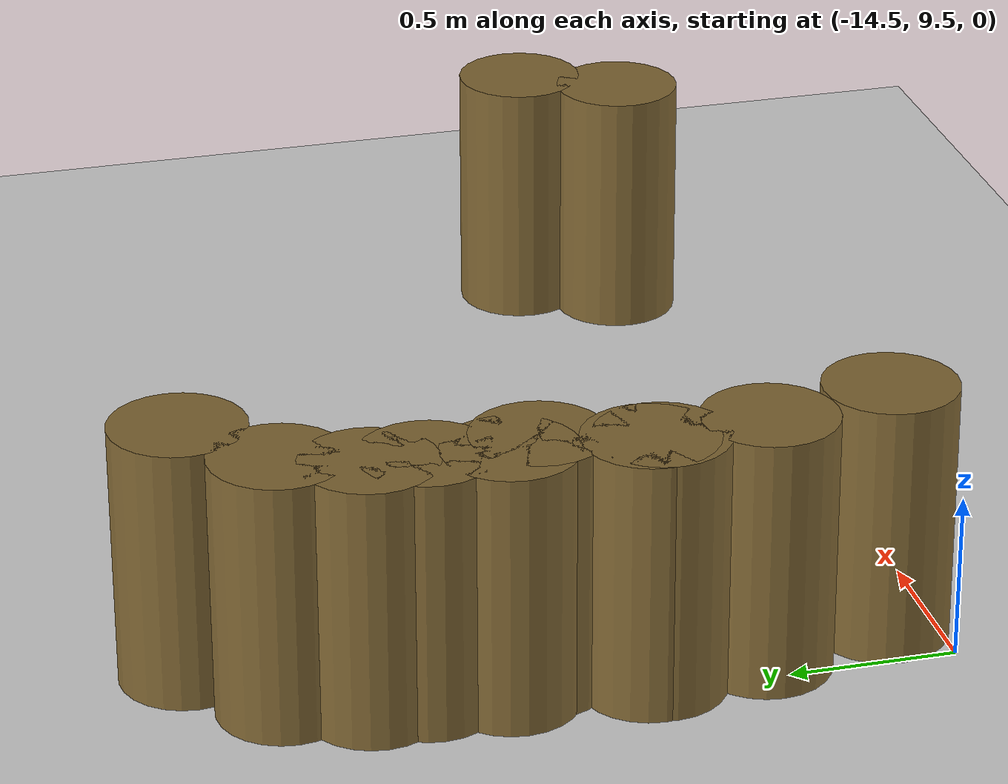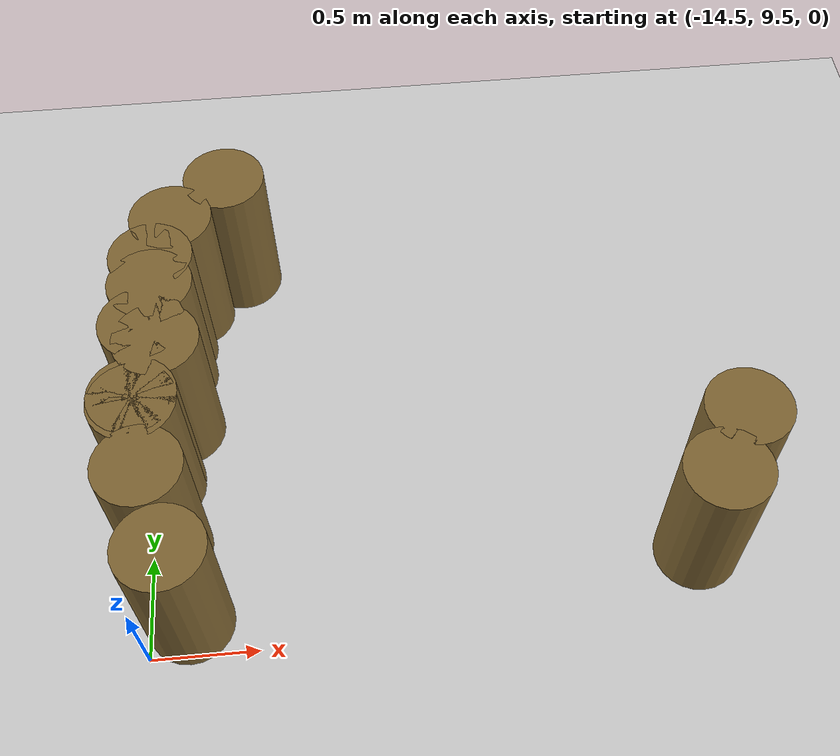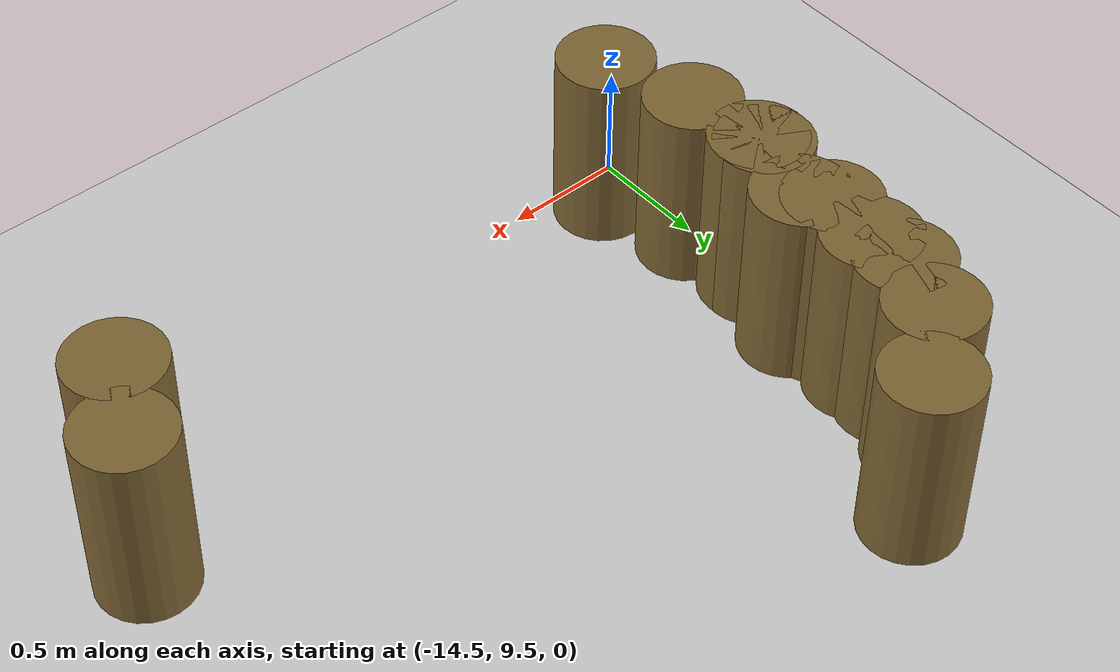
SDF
<sdf version="1.7">
 <world name="default">
  <model name="ground_plane">
   <static>1</static>
   <link name="link">
    <collision name="collision">
     <geometry><plane><normal>0 0 1</normal><size>100 100</size></plane></geometry>
     <surface><friction><ode><mu>100</mu><mu2>50</mu2></ode></friction></surface>
    </collision>
    <visual name="visual">
     <cast_shadows>0</cast_shadows>
     <geometry><plane><normal>0 0 1</normal><size>100 100</size></plane></geometry>
     <material>
      <script><uri>file://media/materials/scripts/gazebo.material</uri><name>Gazebo/Grey</name></script>
     </material>
    </visual>
   </link>
  </model>
  <model name="mini_cylinder_0_clone_0_clone_clone_clone_clone_3_clone_20_clone_78">
   <link name="link">
    <inertial>
     <mass>1</mass>
     <inertia><ixx>0.145833</ixx><ixy>0</ixy><ixz>0</ixz><iyy>0.145833</iyy><iyz>0</iyz><izz>0.125</izz></inertia>
    </inertial>
    <visual name="visual">
     <geometry><cylinder><radius>0.2</radius><length>0.8</length></cylinder></geometry>
     <material>
      <script><name>Gazebo/Grey</name><uri>file://media/materials/scripts/gazebo.material</uri></script>
      <shader type="vertex"><normal_map>__default__</normal_map></shader>
      <ambient>0.5 0.4 0.2 1</ambient>
      <diffuse>0.7 0.7 0.7 1</diffuse>
      <specular>0.01 0.01 0.01 1</specular>
      <emissive>0 0 0 1</emissive>
     </material>
    </visual>
    <collision name="collision">
     <geometry><cylinder><radius>0.2</radius><length>0.8</length></cylinder></geometry>
     <surface>
      <friction>
       <ode><mu>1</mu><mu2>1</mu2><fdir1>0 0 0</fdir1><slip1>0</slip1><slip2>0</slip2></ode>
       <torsional>
        <coefficient>1</coefficient>
        <patch_radius>0</patch_radius>
        <surface_radius>0</surface_radius>
        <use_patch_radius>1</use_patch_radius>
        <ode><slip>0</slip></ode>
       </torsional>
      </friction>
      <bounce><restitution_coefficient>0</restitution_coefficient><threshold>1e+06</threshold></bounce>
      <contact>
       <collide_without_contact>0</collide_without_contact>
       <collide_without_contact_bitmask>1</collide_without_contact_bitmask>
       <collide_bitmask>1</collide_bitmask>
       <ode>
        <soft_cfm>0</soft_cfm>
        <soft_erp>0.2</soft_erp>
        <kp>1e+13</kp>
        <kd>1</kd>
        <max_vel>0.01</max_vel>
        <min_depth>0</min_depth>
       </ode>
       <bullet>
        <split_impulse>1</split_impulse>
        <split_impulse_penetration_threshold>-0.01</split_impulse_penetration_threshold>
        <soft_cfm>0</soft_cfm>
        <soft_erp>0.2</soft_erp>
        <kp>1e+13</kp>
        <kd>1</kd>
       </bullet>
      </contact>
     </surface>
    </collision>
   </link>
   <static>1</static>
   <pose>-11.7857 10.0964 0.4 0 -0 0</pose>
  </model>
  <model name="mini_cylinder_0_clone_0_clone_clone_clone_clone_3_clone_20_clone_79">
   <link name="link">
    <inertial>
     <mass>1</mass>
     <inertia><ixx>0.145833</ixx><ixy>0</ixy><ixz>0</ixz><iyy>0.145833</iyy><iyz>0</iyz><izz>0.125</izz></inertia>
    </inertial>
    <visual name="visual">
     <geometry><cylinder><radius>0.2</radius><length>0.8</length></cylinder></geometry>
     <material>
      <script><name>Gazebo/Grey</name><uri>file://media/materials/scripts/gazebo.material</uri></script>
      <shader type="vertex"><normal_map>__default__</normal_map></shader>
      <ambient>0.5 0.4 0.2 1</ambient>
      <diffuse>0.7 0.7 0.7 1</diffuse>
      <specular>0.01 0.01 0.01 1</specular>
      <emissive>0 0 0 1</emissive>
     </material>
    </visual>
    <collision name="collision">
     <geometry><cylinder><radius>0.2</radius><length>0.8</length></cylinder></geometry>
     <surface>
      <friction>
       <ode><mu>1</mu><mu2>1</mu2><fdir1>0 0 0</fdir1><slip1>0</slip1><slip2>0</slip2></ode>
       <torsional>
        <coefficient>1</coefficient>
        <patch_radius>0</patch_radius>
        <surface_radius>0</surface_radius>
        <use_patch_radius>1</use_patch_radius>
        <ode><slip>0</slip></ode>
       </torsional>
      </friction>
      <bounce><restitution_coefficient>0</restitution_coefficient><threshold>1e+06</threshold></bounce>
      <contact>
       <collide_without_contact>0</collide_without_contact>
       <collide_without_contact_bitmask>1</collide_without_contact_bitmask>
       <collide_bitmask>1</collide_bitmask>
       <ode>
        <soft_cfm>0</soft_cfm>
        <soft_erp>0.2</soft_erp>
        <kp>1e+13</kp>
        <kd>1</kd>
        <max_vel>0.01</max_vel>
        <min_depth>0</min_depth>
       </ode>
       <bullet>
        <split_impulse>1</split_impulse>
        <split_impulse_penetration_threshold>-0.01</split_impulse_penetration_threshold>
        <soft_cfm>0</soft_cfm>
        <soft_erp>0.2</soft_erp>
        <kp>1e+13</kp>
        <kd>1</kd>
       </bullet>
      </contact>
     </surface>
    </collision>
   </link>
   <static>1</static>
   <pose>-11.9441 9.80101 0.4 0 -0 0</pose>
  </model>
  <model name="mini_cylinder_0_clone_0_clone_clone_clone_clone_3_clone_20_clone_89">
   <link name="link">
    <inertial>
     <mass>1</mass>
     <inertia><ixx>0.145833</ixx><ixy>0</ixy><ixz>0</ixz><iyy>0.145833</iyy><iyz>0</iyz><izz>0.125</izz></inertia>
    </inertial>
    <visual name="visual">
     <geometry><cylinder><radius>0.2</radius><length>0.8</length></cylinder></geometry>
     <material>
      <script><name>Gazebo/Grey</name><uri>file://media/materials/scripts/gazebo.material</uri></script>
      <shader type="vertex"><normal_map>__default__</normal_map></shader>
      <ambient>0.5 0.4 0.2 1</ambient>
      <diffuse>0.7 0.7 0.7 1</diffuse>
      <specular>0.01 0.01 0.01 1</specular>
      <emissive>0 0 0 1</emissive>
     </material>
    </visual>
    <collision name="collision">
     <geometry><cylinder><radius>0.2</radius><length>0.8</length></cylinder></geometry>
     <surface>
      <friction>
       <ode><mu>1</mu><mu2>1</mu2><fdir1>0 0 0</fdir1><slip1>0</slip1><slip2>0</slip2></ode>
       <torsional>
        <coefficient>1</coefficient>
        <patch_radius>0</patch_radius>
        <surface_radius>0</surface_radius>
        <use_patch_radius>1</use_patch_radius>
        <ode><slip>0</slip></ode>
       </torsional>
      </friction>
      <bounce><restitution_coefficient>0</restitution_coefficient><threshold>1e+06</threshold></bounce>
      <contact>
       <collide_without_contact>0</collide_without_contact>
       <collide_without_contact_bitmask>1</collide_without_contact_bitmask>
       <collide_bitmask>1</collide_bitmask>
       <ode>
        <soft_cfm>0</soft_cfm>
        <soft_erp>0.2</soft_erp>
        <kp>1e+13</kp>
        <kd>1</kd>
        <max_vel>0.01</max_vel>
        <min_depth>0</min_depth>
       </ode>
       <bullet>
        <split_impulse>1</split_impulse>
        <split_impulse_penetration_threshold>-0.01</split_impulse_penetration_threshold>
        <soft_cfm>0</soft_cfm>
        <soft_erp>0.2</soft_erp>
        <kp>1e+13</kp>
        <kd>1</kd>
       </bullet>
      </contact>
     </surface>
    </collision>
   </link>
   <static>1</static>
   <pose>-14.3158 9.66404 0.4 0 -0 0</pose>
  </model>
  <model name="mini_cylinder_0_clone_0_clone_clone_clone_clone_3_clone_20_clone_90">
   <link name="link">
    <inertial>
     <mass>1</mass>
     <inertia><ixx>0.145833</ixx><ixy>0</ixy><ixz>0</ixz><iyy>0.145833</iyy><iyz>0</iyz><izz>0.125</izz></inertia>
    </inertial>
    <visual name="visual">
     <geometry><cylinder><radius>0.2</radius><length>0.8</length></cylinder></geometry>
     <material>
      <script><name>Gazebo/Grey</name><uri>file://media/materials/scripts/gazebo.material</uri></script>
      <shader type="vertex"><normal_map>__default__</normal_map></shader>
      <ambient>0.5 0.4 0.2 1</ambient>
      <diffuse>0.7 0.7 0.7 1</diffuse>
      <specular>0.01 0.01 0.01 1</specular>
      <emissive>0 0 0 1</emissive>
     </material>
    </visual>
    <collision name="collision">
     <geometry><cylinder><radius>0.2</radius><length>0.8</length></cylinder></geometry>
     <surface>
      <friction>
       <ode><mu>1</mu><mu2>1</mu2><fdir1>0 0 0</fdir1><slip1>0</slip1><slip2>0</slip2></ode>
       <torsional>
        <coefficient>1</coefficient>
        <patch_radius>0</patch_radius>
        <surface_radius>0</surface_radius>
        <use_patch_radius>1</use_patch_radius>
        <ode><slip>0</slip></ode>
       </torsional>
      </friction>
      <bounce><restitution_coefficient>0</restitution_coefficient><threshold>1e+06</threshold></bounce>
      <contact>
       <collide_without_contact>0</collide_without_contact>
       <collide_without_contact_bitmask>1</collide_without_contact_bitmask>
       <collide_bitmask>1</collide_bitmask>
       <ode>
        <soft_cfm>0</soft_cfm>
        <soft_erp>0.2</soft_erp>
        <kp>1e+13</kp>
        <kd>1</kd>
        <max_vel>0.01</max_vel>
        <min_depth>0</min_depth>
       </ode>
       <bullet>
        <split_impulse>1</split_impulse>
        <split_impulse_penetration_threshold>-0.01</split_impulse_penetration_threshold>
        <soft_cfm>0</soft_cfm>
        <soft_erp>0.2</soft_erp>
        <kp>1e+13</kp>
        <kd>1</kd>
       </bullet>
      </contact>
     </surface>
    </collision>
   </link>
   <static>1</static>
   <pose>-14.4197 10.0537 0.4 0 -0 0</pose>
  </model>
  <model name="mini_cylinder_0_clone_0_clone_clone_clone_clone_3_clone_20_clone_91">
   <link name="link">
    <inertial>
     <mass>1</mass>
     <inertia><ixx>0.145833</ixx><ixy>0</ixy><ixz>0</ixz><iyy>0.145833</iyy><iyz>0</iyz><izz>0.125</izz></inertia>
    </inertial>
    <visual name="visual">
     <geometry><cylinder><radius>0.2</radius><length>0.8</length></cylinder></geometry>
     <material>
      <script><name>Gazebo/Grey</name><uri>file://media/materials/scripts/gazebo.material</uri></script>
      <shader type="vertex"><normal_map>__default__</normal_map></shader>
      <ambient>0.5 0.4 0.2 1</ambient>
      <diffuse>0.7 0.7 0.7 1</diffuse>
      <specular>0.01 0.01 0.01 1</specular>
      <emissive>0 0 0 1</emissive>
     </material>
    </visual>
    <collision name="collision">
     <geometry><cylinder><radius>0.2</radius><length>0.8</length></cylinder></geometry>
     <surface>
      <friction>
       <ode><mu>1</mu><mu2>1</mu2><fdir1>0 0 0</fdir1><slip1>0</slip1><slip2>0</slip2></ode>
       <torsional>
        <coefficient>1</coefficient>
        <patch_radius>0</patch_radius>
        <surface_radius>0</surface_radius>
        <use_patch_radius>1</use_patch_radius>
        <ode><slip>0</slip></ode>
       </torsional>
      </friction>
      <bounce><restitution_coefficient>0</restitution_coefficient><threshold>1e+06</threshold></bounce>
      <contact>
       <collide_without_contact>0</collide_without_contact>
       <collide_without_contact_bitmask>1</collide_without_contact_bitmask>
       <collide_bitmask>1</collide_bitmask>
       <ode>
        <soft_cfm>0</soft_cfm>
        <soft_erp>0.2</soft_erp>
        <kp>1e+13</kp>
        <kd>1</kd>
        <max_vel>0.01</max_vel>
        <min_depth>0</min_depth>
       </ode>
       <bullet>
        <split_impulse>1</split_impulse>
        <split_impulse_penetration_threshold>-0.01</split_impulse_penetration_threshold>
        <soft_cfm>0</soft_cfm>
        <soft_erp>0.2</soft_erp>
        <kp>1e+13</kp>
        <kd>1</kd>
       </bullet>
      </contact>
     </surface>
    </collision>
   </link>
   <static>1</static>
   <pose>-14.4579 10.4114 0.4 0 -0 0</pose>
  </model>
  <model name="mini_cylinder_0_clone_0_clone_clone_clone_clone_3_clone_20_clone_92">
   <link name="link">
    <inertial>
     <mass>1</mass>
     <inertia><ixx>0.145833</ixx><ixy>0</ixy><ixz>0</ixz><iyy>0.145833</iyy><iyz>0</iyz><izz>0.125</izz></inertia>
    </inertial>
    <visual name="visual">
     <geometry><cylinder><radius>0.2</radius><length>0.8</length></cylinder></geometry>
     <material>
      <script><name>Gazebo/Grey</name><uri>file://media/materials/scripts/gazebo.material</uri></script>
      <shader type="vertex"><normal_map>__default__</normal_map></shader>
      <ambient>0.5 0.4 0.2 1</ambient>
      <diffuse>0.7 0.7 0.7 1</diffuse>
      <specular>0.01 0.01 0.01 1</specular>
      <emissive>0 0 0 1</emissive>
     </material>
    </visual>
    <collision name="collision">
     <geometry><cylinder><radius>0.2</radius><length>0.8</length></cylinder></geometry>
     <surface>
      <friction>
       <ode><mu>1</mu><mu2>1</mu2><fdir1>0 0 0</fdir1><slip1>0</slip1><slip2>0</slip2></ode>
       <torsional>
        <coefficient>1</coefficient>
        <patch_radius>0</patch_radius>
        <surface_radius>0</surface_radius>
        <use_patch_radius>1</use_patch_radius>
        <ode><slip>0</slip></ode>
       </torsional>
      </friction>
      <bounce><restitution_coefficient>0</restitution_coefficient><threshold>1e+06</threshold></bounce>
      <contact>
       <collide_without_contact>0</collide_without_contact>
       <collide_without_contact_bitmask>1</collide_without_contact_bitmask>
       <collide_bitmask>1</collide_bitmask>
       <ode>
        <soft_cfm>0</soft_cfm>
        <soft_erp>0.2</soft_erp>
        <kp>1e+13</kp>
        <kd>1</kd>
        <max_vel>0.01</max_vel>
        <min_depth>0</min_depth>
       </ode>
       <bullet>
        <split_impulse>1</split_impulse>
        <split_impulse_penetration_threshold>-0.01</split_impulse_penetration_threshold>
        <soft_cfm>0</soft_cfm>
        <soft_erp>0.2</soft_erp>
        <kp>1e+13</kp>
        <kd>1</kd>
       </bullet>
      </contact>
     </surface>
    </collision>
   </link>
   <static>1</static>
   <pose>-14.4319 10.8018 0.4 0 -0 0</pose>
  </model>
  <model name="mini_cylinder_0_clone_0_clone_clone_clone_clone_3_clone_20_clone_93">
   <link name="link">
    <inertial>
     <mass>1</mass>
     <inertia><ixx>0.145833</ixx><ixy>0</ixy><ixz>0</ixz><iyy>0.145833</iyy><iyz>0</iyz><izz>0.125</izz></inertia>
    </inertial>
    <visual name="visual">
     <geometry><cylinder><radius>0.2</radius><length>0.8</length></cylinder></geometry>
     <material>
      <script><name>Gazebo/Grey</name><uri>file://media/materials/scripts/gazebo.material</uri></script>
      <shader type="vertex"><normal_map>__default__</normal_map></shader>
      <ambient>0.5 0.4 0.2 1</ambient>
      <diffuse>0.7 0.7 0.7 1</diffuse>
      <specular>0.01 0.01 0.01 1</specular>
      <emissive>0 0 0 1</emissive>
     </material>
    </visual>
    <collision name="collision">
     <geometry><cylinder><radius>0.2</radius><length>0.8</length></cylinder></geometry>
     <surface>
      <friction>
       <ode><mu>1</mu><mu2>1</mu2><fdir1>0 0 0</fdir1><slip1>0</slip1><slip2>0</slip2></ode>
       <torsional>
        <coefficient>1</coefficient>
        <patch_radius>0</patch_radius>
        <surface_radius>0</surface_radius>
        <use_patch_radius>1</use_patch_radius>
        <ode><slip>0</slip></ode>
       </torsional>
      </friction>
      <bounce><restitution_coefficient>0</restitution_coefficient><threshold>1e+06</threshold></bounce>
      <contact>
       <collide_without_contact>0</collide_without_contact>
       <collide_without_contact_bitmask>1</collide_without_contact_bitmask>
       <collide_bitmask>1</collide_bitmask>
       <ode>
        <soft_cfm>0</soft_cfm>
        <soft_erp>0.2</soft_erp>
        <kp>1e+13</kp>
        <kd>1</kd>
        <max_vel>0.01</max_vel>
        <min_depth>0</min_depth>
       </ode>
       <bullet>
        <split_impulse>1</split_impulse>
        <split_impulse_penetration_threshold>-0.01</split_impulse_penetration_threshold>
        <soft_cfm>0</soft_cfm>
        <soft_erp>0.2</soft_erp>
        <kp>1e+13</kp>
        <kd>1</kd>
       </bullet>
      </contact>
     </surface>
    </collision>
   </link>
   <static>1</static>
   <pose>-14.4055 11.1936 0.4 0 -0 0</pose>
  </model>
  <model name="mini_cylinder_0_clone_0_clone_clone_clone_clone_3_clone_20_clone_94">
   <link name="link">
    <inertial>
     <mass>1</mass>
     <inertia><ixx>0.145833</ixx><ixy>0</ixy><ixz>0</ixz><iyy>0.145833</iyy><iyz>0</iyz><izz>0.125</izz></inertia>
    </inertial>
    <visual name="visual">
     <geometry><cylinder><radius>0.2</radius><length>0.8</length></cylinder></geometry>
     <material>
      <script><name>Gazebo/Grey</name><uri>file://media/materials/scripts/gazebo.material</uri></script>
      <shader type="vertex"><normal_map>__default__</normal_map></shader>
      <ambient>0.5 0.4 0.2 1</ambient>
      <diffuse>0.7 0.7 0.7 1</diffuse>
      <specular>0.01 0.01 0.01 1</specular>
      <emissive>0 0 0 1</emissive>
     </material>
    </visual>
    <collision name="collision">
     <geometry><cylinder><radius>0.2</radius><length>0.8</length></cylinder></geometry>
     <surface>
      <friction>
       <ode><mu>1</mu><mu2>1</mu2><fdir1>0 0 0</fdir1><slip1>0</slip1><slip2>0</slip2></ode>
       <torsional>
        <coefficient>1</coefficient>
        <patch_radius>0</patch_radius>
        <surface_radius>0</surface_radius>
        <use_patch_radius>1</use_patch_radius>
        <ode><slip>0</slip></ode>
       </torsional>
      </friction>
      <bounce><restitution_coefficient>0</restitution_coefficient><threshold>1e+06</threshold></bounce>
      <contact>
       <collide_without_contact>0</collide_without_contact>
       <collide_without_contact_bitmask>1</collide_without_contact_bitmask>
       <collide_bitmask>1</collide_bitmask>
       <ode>
        <soft_cfm>0</soft_cfm>
        <soft_erp>0.2</soft_erp>
        <kp>1e+13</kp>
        <kd>1</kd>
        <max_vel>0.01</max_vel>
        <min_depth>0</min_depth>
       </ode>
       <bullet>
        <split_impulse>1</split_impulse>
        <split_impulse_penetration_threshold>-0.01</split_impulse_penetration_threshold>
        <soft_cfm>0</soft_cfm>
        <soft_erp>0.2</soft_erp>
        <kp>1e+13</kp>
        <kd>1</kd>
       </bullet>
      </contact>
     </surface>
    </collision>
   </link>
   <static>1</static>
   <pose>-14.4035 11.031 0.4 0 -0 0</pose>
  </model>
  <model name="mini_cylinder_0_clone_0_clone_clone_clone_clone_3_clone_20_clone_95">
   <link name="link">
    <inertial>
     <mass>1</mass>
     <inertia><ixx>0.145833</ixx><ixy>0</ixy><ixz>0</ixz><iyy>0.145833</iyy><iyz>0</iyz><izz>0.125</izz></inertia>
    </inertial>
    <visual name="visual">
     <geometry><cylinder><radius>0.2</radius><length>0.8</length></cylinder></geometry>
     <material>
      <script><name>Gazebo/Grey</name><uri>file://media/materials/scripts/gazebo.material</uri></script>
      <shader type="vertex"><normal_map>__default__</normal_map></shader>
      <ambient>0.5 0.4 0.2 1</ambient>
      <diffuse>0.7 0.7 0.7 1</diffuse>
      <specular>0.01 0.01 0.01 1</specular>
      <emissive>0 0 0 1</emissive>
     </material>
    </visual>
    <collision name="collision">
     <geometry><cylinder><radius>0.2</radius><length>0.8</length></cylinder></geometry>
     <surface>
      <friction>
       <ode><mu>1</mu><mu2>1</mu2><fdir1>0 0 0</fdir1><slip1>0</slip1><slip2>0</slip2></ode>
       <torsional>
        <coefficient>1</coefficient>
        <patch_radius>0</patch_radius>
        <surface_radius>0</surface_radius>
        <use_patch_radius>1</use_patch_radius>
        <ode><slip>0</slip></ode>
       </torsional>
      </friction>
      <bounce><restitution_coefficient>0</restitution_coefficient><threshold>1e+06</threshold></bounce>
      <contact>
       <collide_without_contact>0</collide_without_contact>
       <collide_without_contact_bitmask>1</collide_without_contact_bitmask>
       <collide_bitmask>1</collide_bitmask>
       <ode>
        <soft_cfm>0</soft_cfm>
        <soft_erp>0.2</soft_erp>
        <kp>1e+13</kp>
        <kd>1</kd>
        <max_vel>0.01</max_vel>
        <min_depth>0</min_depth>
       </ode>
       <bullet>
        <split_impulse>1</split_impulse>
        <split_impulse_penetration_threshold>-0.01</split_impulse_penetration_threshold>
        <soft_cfm>0</soft_cfm>
        <soft_erp>0.2</soft_erp>
        <kp>1e+13</kp>
        <kd>1</kd>
       </bullet>
      </contact>
     </surface>
    </collision>
   </link>
   <static>1</static>
   <pose>-14.365 10.7053 0.4 0 -0 0</pose>
  </model>
  <model name="mini_cylinder_0_clone_0_clone_clone_clone_clone_3_clone_20_clone_96">
   <link name="link">
    <inertial>
     <mass>1</mass>
     <inertia><ixx>0.145833</ixx><ixy>0</ixy><ixz>0</ixz><iyy>0.145833</iyy><iyz>0</iyz><izz>0.125</izz></inertia>
    </inertial>
    <visual name="visual">
     <geometry><cylinder><radius>0.2</radius><length>0.8</length></cylinder></geometry>
     <material>
      <script><name>Gazebo/Grey</name><uri>file://media/materials/scripts/gazebo.material</uri></script>
      <shader type="vertex"><normal_map>__default__</normal_map></shader>
      <ambient>0.5 0.4 0.2 1</ambient>
      <diffuse>0.7 0.7 0.7 1</diffuse>
      <specular>0.01 0.01 0.01 1</specular>
      <emissive>0 0 0 1</emissive>
     </material>
    </visual>
    <collision name="collision">
     <geometry><cylinder><radius>0.2</radius><length>0.8</length></cylinder></geometry>
     <surface>
      <friction>
       <ode><mu>1</mu><mu2>1</mu2><fdir1>0 0 0</fdir1><slip1>0</slip1><slip2>0</slip2></ode>
       <torsional>
        <coefficient>1</coefficient>
        <patch_radius>0</patch_radius>
        <surface_radius>0</surface_radius>
        <use_patch_radius>1</use_patch_radius>
        <ode><slip>0</slip></ode>
       </torsional>
      </friction>
      <bounce><restitution_coefficient>0</restitution_coefficient><threshold>1e+06</threshold></bounce>
      <contact>
       <collide_without_contact>0</collide_without_contact>
       <collide_without_contact_bitmask>1</collide_without_contact_bitmask>
       <collide_bitmask>1</collide_bitmask>
       <ode>
        <soft_cfm>0</soft_cfm>
        <soft_erp>0.2</soft_erp>
        <kp>1e+13</kp>
        <kd>1</kd>
        <max_vel>0.01</max_vel>
        <min_depth>0</min_depth>
       </ode>
       <bullet>
        <split_impulse>1</split_impulse>
        <split_impulse_penetration_threshold>-0.01</split_impulse_penetration_threshold>
        <soft_cfm>0</soft_cfm>
        <soft_erp>0.2</soft_erp>
        <kp>1e+13</kp>
        <kd>1</kd>
       </bullet>
      </contact>
     </surface>
    </collision>
   </link>
   <static>1</static>
   <pose>-14.4579 10.3789 0.4 0 -0 0</pose>
  </model>
  <model name="mini_cylinder_0_clone_0_clone_clone_clone_clone_3_clone_20_clone_102">
   <link name="link">
    <inertial>
     <mass>1</mass>
     <inertia><ixx>0.145833</ixx><ixy>0</ixy><ixz>0</ixz><iyy>0.145833</iyy><iyz>0</iyz><izz>0.125</izz></inertia>
    </inertial>
    <visual name="visual">
     <geometry><cylinder><radius>0.2</radius><length>0.8</length></cylinder></geometry>
     <material>
      <script><name>Gazebo/Grey</name><uri>file://media/materials/scripts/gazebo.material</uri></script>
      <shader type="vertex"><normal_map>__default__</normal_map></shader>
      <ambient>0.5 0.4 0.2 1</ambient>
      <diffuse>0.7 0.7 0.7 1</diffuse>
      <specular>0.01 0.01 0.01 1</specular>
      <emissive>0 0 0 1</emissive>
     </material>
    </visual>
    <collision name="collision">
     <geometry><cylinder><radius>0.2</radius><length>0.8</length></cylinder></geometry>
     <surface>
      <friction>
       <ode><mu>1</mu><mu2>1</mu2><fdir1>0 0 0</fdir1><slip1>0</slip1><slip2>0</slip2></ode>
       <torsional>
        <coefficient>1</coefficient>
        <patch_radius>0</patch_radius>
        <surface_radius>0</surface_radius>
        <use_patch_radius>1</use_patch_radius>
        <ode><slip>0</slip></ode>
       </torsional>
      </friction>
      <bounce><restitution_coefficient>0</restitution_coefficient><threshold>1e+06</threshold></bounce>
      <contact>
       <collide_without_contact>0</collide_without_contact>
       <collide_without_contact_bitmask>1</collide_without_contact_bitmask>
       <collide_bitmask>1</collide_bitmask>
       <ode>
        <soft_cfm>0</soft_cfm>
        <soft_erp>0.2</soft_erp>
        <kp>1e+13</kp>
        <kd>1</kd>
        <max_vel>0.01</max_vel>
        <min_depth>0</min_depth>
       </ode>
       <bullet>
        <split_impulse>1</split_impulse>
        <split_impulse_penetration_threshold>-0.01</split_impulse_penetration_threshold>
        <soft_cfm>0</soft_cfm>
        <soft_erp>0.2</soft_erp>
        <kp>1e+13</kp>
        <kd>1</kd>
       </bullet>
      </contact>
     </surface>
    </collision>
   </link>
   <static>1</static>
   <pose>-14.318 11.429 0.4 0 -0 0</pose>
  </model>
  <model name="mini_cylinder_0_clone_0_clone_clone_clone_clone_3_clone_20_clone_103">
   <link name="link">
    <inertial>
     <mass>1</mass>
     <inertia><ixx>0.145833</ixx><ixy>0</ixy><ixz>0</ixz><iyy>0.145833</iyy><iyz>0</iyz><izz>0.125</izz></inertia>
    </inertial>
    <visual name="visual">
     <geometry><cylinder><radius>0.2</radius><length>0.8</length></cylinder></geometry>
     <material>
      <script><name>Gazebo/Grey</name><uri>file://media/materials/scripts/gazebo.material</uri></script>
      <shader type="vertex"><normal_map>__default__</normal_map></shader>
      <ambient>0.5 0.4 0.2 1</ambient>
      <diffuse>0.7 0.7 0.7 1</diffuse>
      <specular>0.01 0.01 0.01 1</specular>
      <emissive>0 0 0 1</emissive>
     </material>
    </visual>
    <collision name="collision">
     <geometry><cylinder><radius>0.2</radius><length>0.8</length></cylinder></geometry>
     <surface>
      <friction>
       <ode><mu>1</mu><mu2>1</mu2><fdir1>0 0 0</fdir1><slip1>0</slip1><slip2>0</slip2></ode>
       <torsional>
        <coefficient>1</coefficient>
        <patch_radius>0</patch_radius>
        <surface_radius>0</surface_radius>
        <use_patch_radius>1</use_patch_radius>
        <ode><slip>0</slip></ode>
       </torsional>
      </friction>
      <bounce><restitution_coefficient>0</restitution_coefficient><threshold>1e+06</threshold></bounce>
      <contact>
       <collide_without_contact>0</collide_without_contact>
       <collide_without_contact_bitmask>1</collide_without_contact_bitmask>
       <collide_bitmask>1</collide_bitmask>
       <ode>
        <soft_cfm>0</soft_cfm>
        <soft_erp>0.2</soft_erp>
        <kp>1e+13</kp>
        <kd>1</kd>
        <max_vel>0.01</max_vel>
        <min_depth>0</min_depth>
       </ode>
       <bullet>
        <split_impulse>1</split_impulse>
        <split_impulse_penetration_threshold>-0.01</split_impulse_penetration_threshold>
        <soft_cfm>0</soft_cfm>
        <soft_erp>0.2</soft_erp>
        <kp>1e+13</kp>
        <kd>1</kd>
       </bullet>
      </contact>
     </surface>
    </collision>
   </link>
   <static>1</static>
   <pose>-14.0613 11.6608 0.4 0 -0 0</pose>
  </model>
 </world>
</sdf>
